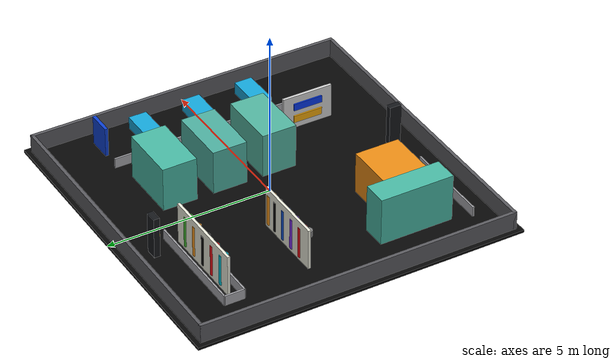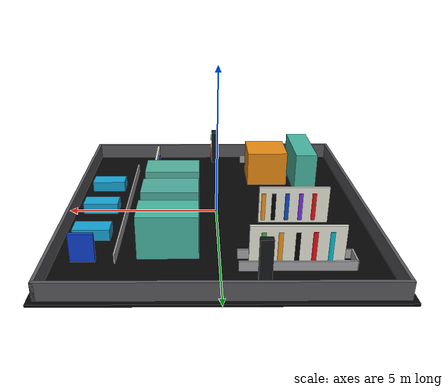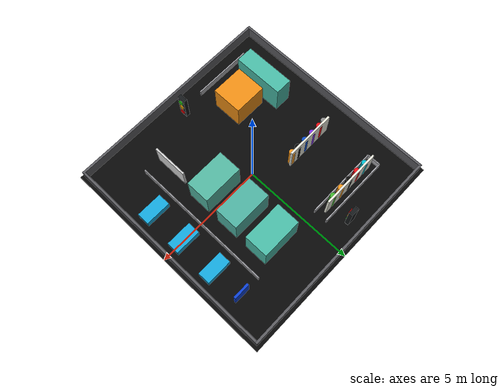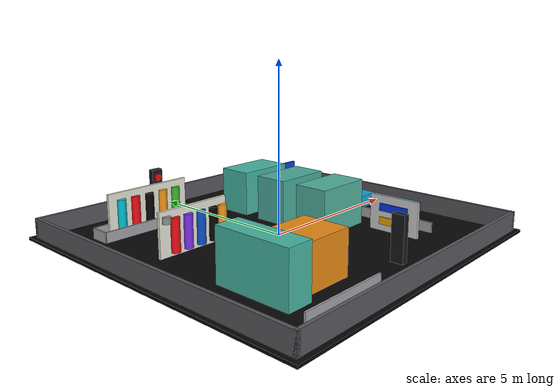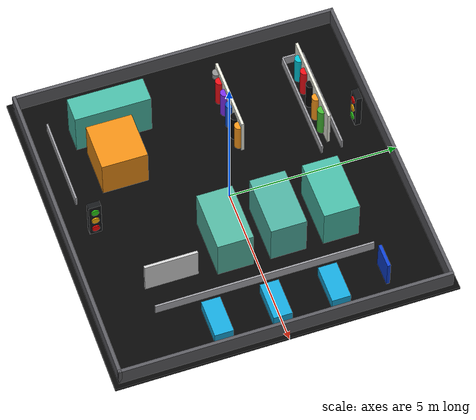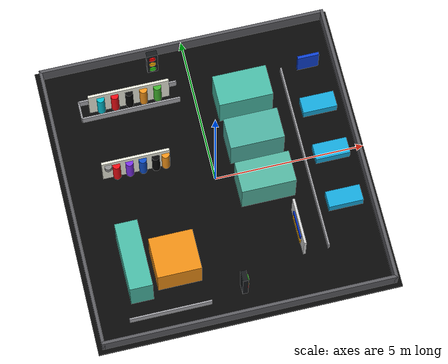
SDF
<?xml version="1.0"?>
<sdf version="1.6">
  <world name="smart_community">
    <plugin name="ros_api" filename="libgazebo_ros_api_plugin.so"/>

    <gravity>0 0 -9.8</gravity>
    <physics type="ode">
      <real_time_update_rate>1000</real_time_update_rate>
      <max_step_size>0.001</max_step_size>
    </physics>
    <scene>
      <ambient>0.55 0.55 0.55 1</ambient>
      <background>0.78 0.82 0.86 1</background>
      <shadows>true</shadows>
    </scene>
    <gui fullscreen="0">
      <camera name="user_camera">
        <pose>0 -8.8 9.0 0 0.78 1.5708</pose>
        <view_controller>orbit</view_controller>
      </camera>
    </gui>

    <light name="sun" type="directional">
      <pose>0 0 10 0 0 0</pose>
      <diffuse>0.95 0.95 0.90 1</diffuse>
      <specular>0.25 0.25 0.25 1</specular>
      <direction>-0.4 0.2 -0.9</direction>
    </light>

    <!-- The official field uses the existing 10 m x 10 m coordinate system. -->
    <model name="map_floor">
      <static>true</static>
      <link name="floor">
        <collision name="floor_collision">
          <pose>0 0 0 0 0 0</pose>
          <geometry><box><size>10 10 0.08</size></box></geometry>
          <surface>
            <friction><ode><mu>1.0</mu><mu2>1.0</mu2></ode></friction>
          </surface>
        </collision>
        <visual name="black_floor">
          <pose>0 0 0.005 0 0 0</pose>
          <geometry><box><size>10 10 0.08</size></box></geometry>
          <material><ambient>0.025 0.025 0.025 1</ambient><diffuse>0.025 0.025 0.025 1</diffuse></material>
        </visual>
      </link>
    </model>

    <!-- White guide lines are 1 mm high visuals only, so they cannot block wheels. -->
    <model name="map_white_lines">
      <static>true</static>
      <link name="lines">
        <visual name="outer_bottom"><pose>0 -4.75 0.041 0 0 0</pose><geometry><box><size>9.5 0.05 0.001</size></box></geometry><material><ambient>1 1 1 1</ambient><diffuse>1 1 1 1</diffuse></material></visual>
        <visual name="outer_top"><pose>0 4.75 0.041 0 0 0</pose><geometry><box><size>9.5 0.05 0.001</size></box></geometry><material><ambient>1 1 1 1</ambient><diffuse>1 1 1 1</diffuse></material></visual>
        <visual name="outer_left"><pose>-4.75 0 0.041 0 0 0</pose><geometry><box><size>0.05 9.5 0.001</size></box></geometry><material><ambient>1 1 1 1</ambient><diffuse>1 1 1 1</diffuse></material></visual>
        <visual name="outer_right"><pose>4.75 0 0.041 0 0 0</pose><geometry><box><size>0.05 9.5 0.001</size></box></geometry><material><ambient>1 1 1 1</ambient><diffuse>1 1 1 1</diffuse></material></visual>
        <visual name="parking_left"><pose>3.0 0 0.041 0 0 0</pose><geometry><box><size>0.05 9.5 0.001</size></box></geometry><material><ambient>1 1 1 1</ambient><diffuse>1 1 1 1</diffuse></material></visual>
        <visual name="parking_slot_1"><pose>3.88 2.55 0.041 0 0 0</pose><geometry><box><size>1.75 0.05 0.001</size></box></geometry><material><ambient>1 1 1 1</ambient><diffuse>1 1 1 1</diffuse></material></visual>
        <visual name="parking_slot_2"><pose>3.88 0.85 0.041 0 0 0</pose><geometry><box><size>1.75 0.05 0.001</size></box></geometry><material><ambient>1 1 1 1</ambient><diffuse>1 1 1 1</diffuse></material></visual>
        <visual name="parking_slot_3"><pose>3.88 -0.85 0.041 0 0 0</pose><geometry><box><size>1.75 0.05 0.001</size></box></geometry><material><ambient>1 1 1 1</ambient><diffuse>1 1 1 1</diffuse></material></visual>
        <visual name="parking_slot_4"><pose>3.88 -2.55 0.041 0 0 0</pose><geometry><box><size>1.75 0.05 0.001</size></box></geometry><material><ambient>1 1 1 1</ambient><diffuse>1 1 1 1</diffuse></material></visual>
        <visual name="people_a_top"><pose>-2.15 3.55 0.041 0 0 0</pose><geometry><box><size>3.3 0.05 0.001</size></box></geometry><material><ambient>1 1 1 1</ambient><diffuse>1 1 1 1</diffuse></material></visual>
        <!-- Official marked A-area width: 3.55 - 2.95 = 0.60 m. -->
        <visual name="people_a_left"><pose>-3.8 3.25 0.041 0 0 0</pose><geometry><box><size>0.05 0.60 0.001</size></box></geometry><material><ambient>1 1 1 1</ambient><diffuse>1 1 1 1</diffuse></material></visual>
        <visual name="people_a_bottom"><pose>-2.15 2.95 0.041 0 0 0</pose><geometry><box><size>3.3 0.05 0.001</size></box></geometry><material><ambient>1 1 1 1</ambient><diffuse>1 1 1 1</diffuse></material></visual>
        <visual name="people_b_top"><pose>-2.45 1.15 0.041 0 0 0</pose><geometry><box><size>2.7 0.05 0.001</size></box></geometry><material><ambient>1 1 1 1</ambient><diffuse>1 1 1 1</diffuse></material></visual>
        <visual name="left_block_left"><pose>-3.8 -1.45 0.041 0 0 0</pose><geometry><box><size>0.05 5.2 0.001</size></box></geometry><material><ambient>1 1 1 1</ambient><diffuse>1 1 1 1</diffuse></material></visual>
        <visual name="left_block_right"><pose>-1.1 -1.45 0.041 0 0 0</pose><geometry><box><size>0.05 5.2 0.001</size></box></geometry><material><ambient>1 1 1 1</ambient><diffuse>1 1 1 1</diffuse></material></visual>
        <!-- Official marked bottom width: -4.15 - (-4.75) = 0.60 m. -->
        <visual name="left_block_bottom"><pose>-2.45 -4.15 0.041 0 0 0</pose><geometry><box><size>2.7 0.05 0.001</size></box></geometry><material><ambient>1 1 1 1</ambient><diffuse>1 1 1 1</diffuse></material></visual>
        <visual name="central_left"><pose>0.55 0.0 0.041 0 0 0</pose><geometry><box><size>0.05 7.0 0.001</size></box></geometry><material><ambient>1 1 1 1</ambient><diffuse>1 1 1 1</diffuse></material></visual>
        <visual name="central_right"><pose>2.4 0.0 0.041 0 0 0</pose><geometry><box><size>0.05 7.0 0.001</size></box></geometry><material><ambient>1 1 1 1</ambient><diffuse>1 1 1 1</diffuse></material></visual>
      </link>
    </model>

    <model name="outer_walls">
      <static>true</static>
      <link name="walls">
        <collision name="north_collision"><pose>0 4.80 0.30 0 0 0</pose><geometry><box><size>9.70 0.10 0.60</size></box></geometry></collision>
        <collision name="south_collision"><pose>0 -4.80 0.30 0 0 0</pose><geometry><box><size>9.70 0.10 0.60</size></box></geometry></collision>
        <collision name="east_collision"><pose>4.80 0 0.30 0 0 0</pose><geometry><box><size>0.10 9.70 0.60</size></box></geometry></collision>
        <collision name="west_collision"><pose>-4.80 0 0.30 0 0 0</pose><geometry><box><size>0.10 9.70 0.60</size></box></geometry></collision>
        <visual name="north"><pose>0 4.80 0.30 0 0 0</pose><geometry><box><size>9.70 0.10 0.60</size></box></geometry><material><ambient>0.35 0.35 0.37 1</ambient><diffuse>0.35 0.35 0.37 1</diffuse></material></visual>
        <visual name="south"><pose>0 -4.80 0.30 0 0 0</pose><geometry><box><size>9.70 0.10 0.60</size></box></geometry><material><ambient>0.35 0.35 0.37 1</ambient><diffuse>0.35 0.35 0.37 1</diffuse></material></visual>
        <visual name="east"><pose>4.80 0 0.30 0 0 0</pose><geometry><box><size>0.10 9.70 0.60</size></box></geometry><material><ambient>0.35 0.35 0.37 1</ambient><diffuse>0.35 0.35 0.37 1</diffuse></material></visual>
        <visual name="west"><pose>-4.80 0 0.30 0 0 0</pose><geometry><box><size>0.10 9.70 0.60</size></box></geometry><material><ambient>0.35 0.35 0.37 1</ambient><diffuse>0.35 0.35 0.37 1</diffuse></material></visual>
      </link>
    </model>

    <!-- Low physical boundaries make all three official 0.60 m markings lidar-visible. -->
    <model name="field_boundaries">
      <static>true</static>
      <link name="boundaries">
        <collision name="people_a_top_boundary"><pose>-2.15 3.55 0.175 0 0 0</pose><geometry><box><size>3.30 0.05 0.35</size></box></geometry></collision>
        <collision name="people_a_bottom_boundary"><pose>-2.15 2.95 0.175 0 0 0</pose><geometry><box><size>3.30 0.05 0.35</size></box></geometry></collision>
        <collision name="people_a_left_boundary"><pose>-3.80 3.25 0.175 0 0 0</pose><geometry><box><size>0.05 0.60 0.35</size></box></geometry></collision>
        <collision name="parking_boundary"><pose>3.00 0 0.175 0 0 0</pose><geometry><box><size>0.05 6.40 0.35</size></box></geometry></collision>
        <collision name="left_block_bottom_boundary"><pose>-2.45 -4.15 0.175 0 0 0</pose><geometry><box><size>2.70 0.05 0.35</size></box></geometry></collision>
        <visual name="people_a_top_wall"><pose>-2.15 3.55 0.175 0 0 0</pose><geometry><box><size>3.30 0.05 0.35</size></box></geometry><material><ambient>0.65 0.65 0.67 1</ambient><diffuse>0.65 0.65 0.67 1</diffuse></material></visual>
        <visual name="people_a_bottom_wall"><pose>-2.15 2.95 0.175 0 0 0</pose><geometry><box><size>3.30 0.05 0.35</size></box></geometry><material><ambient>0.65 0.65 0.67 1</ambient><diffuse>0.65 0.65 0.67 1</diffuse></material></visual>
        <visual name="people_a_left_wall"><pose>-3.80 3.25 0.175 0 0 0</pose><geometry><box><size>0.05 0.60 0.35</size></box></geometry><material><ambient>0.65 0.65 0.67 1</ambient><diffuse>0.65 0.65 0.67 1</diffuse></material></visual>
        <visual name="parking_wall"><pose>3.00 0 0.175 0 0 0</pose><geometry><box><size>0.05 6.40 0.35</size></box></geometry><material><ambient>0.65 0.65 0.67 1</ambient><diffuse>0.65 0.65 0.67 1</diffuse></material></visual>
        <visual name="left_block_bottom_wall"><pose>-2.45 -4.15 0.175 0 0 0</pose><geometry><box><size>2.70 0.05 0.35</size></box></geometry><material><ambient>0.65 0.65 0.67 1</ambient><diffuse>0.65 0.65 0.67 1</diffuse></material></visual>
      </link>
    </model>

    <!-- A and B inspection boards. Their thin collisions are visible to lidar. -->
    <model name="people_area_a">
      <static>true</static><pose>-2.15 3.25 0.68 0 0 0</pose>
      <link name="board">
        <collision name="board_collision"><geometry><box><size>2.7 0.08 1.25</size></box></geometry></collision>
        <visual name="board"><geometry><box><size>2.7 0.08 1.25</size></box></geometry><material><ambient>0.92 0.92 0.86 1</ambient><diffuse>0.92 0.92 0.86 1</diffuse></material></visual>
        <visual name="person_cyan"><pose>-0.95 -0.07 -0.05 0 0 0</pose><geometry><cylinder><radius>0.13</radius><length>0.95</length></cylinder></geometry><material><ambient>0.0 0.75 0.82 1</ambient><diffuse>0.0 0.75 0.82 1</diffuse></material></visual>
        <visual name="person_red"><pose>-0.48 -0.07 -0.05 0 0 0</pose><geometry><cylinder><radius>0.13</radius><length>0.95</length></cylinder></geometry><material><ambient>0.92 0.05 0.08 1</ambient><diffuse>0.92 0.05 0.08 1</diffuse></material></visual>
        <visual name="person_black"><pose>0 -0.07 -0.05 0 0 0</pose><geometry><cylinder><radius>0.13</radius><length>0.95</length></cylinder></geometry><material><ambient>0.02 0.02 0.02 1</ambient><diffuse>0.02 0.02 0.02 1</diffuse></material></visual>
        <visual name="person_orange"><pose>0.48 -0.07 -0.05 0 0 0</pose><geometry><cylinder><radius>0.13</radius><length>0.95</length></cylinder></geometry><material><ambient>0.95 0.58 0.10 1</ambient><diffuse>0.95 0.58 0.10 1</diffuse></material></visual>
        <visual name="person_green"><pose>0.95 -0.07 -0.05 0 0 0</pose><geometry><cylinder><radius>0.13</radius><length>0.95</length></cylinder></geometry><material><ambient>0.25 0.70 0.18 1</ambient><diffuse>0.25 0.70 0.18 1</diffuse></material></visual>
      </link>
    </model>

    <model name="people_area_b">
      <static>true</static><pose>-2.45 0.86 0.68 0 0 0</pose>
      <link name="board">
        <collision name="board_collision"><geometry><box><size>2.25 0.08 1.25</size></box></geometry></collision>
        <visual name="board"><geometry><box><size>2.25 0.08 1.25</size></box></geometry><material><ambient>0.92 0.92 0.86 1</ambient><diffuse>0.92 0.92 0.86 1</diffuse></material></visual>
        <visual name="instruction_sign"><pose>-0.92 -0.08 0.40 0 0 0</pose><geometry><cylinder><radius>0.12</radius><length>0.18</length></cylinder></geometry><material><ambient>0.55 0.55 0.55 1</ambient><diffuse>0.55 0.55 0.55 1</diffuse></material></visual>
        <visual name="person_red"><pose>-0.65 -0.07 -0.06 0 0 0</pose><geometry><cylinder><radius>0.13</radius><length>0.95</length></cylinder></geometry><material><ambient>0.92 0.05 0.08 1</ambient><diffuse>0.92 0.05 0.08 1</diffuse></material></visual>
        <visual name="person_purple"><pose>-0.22 -0.07 -0.06 0 0 0</pose><geometry><cylinder><radius>0.13</radius><length>0.95</length></cylinder></geometry><material><ambient>0.48 0.18 0.90 1</ambient><diffuse>0.48 0.18 0.90 1</diffuse></material></visual>
        <visual name="person_blue"><pose>0.22 -0.07 -0.06 0 0 0</pose><geometry><cylinder><radius>0.13</radius><length>0.95</length></cylinder></geometry><material><ambient>0.05 0.30 0.78 1</ambient><diffuse>0.05 0.30 0.78 1</diffuse></material></visual>
        <visual name="person_black"><pose>0.65 -0.07 -0.06 0 0 0</pose><geometry><cylinder><radius>0.13</radius><length>0.95</length></cylinder></geometry><material><ambient>0.02 0.02 0.02 1</ambient><diffuse>0.02 0.02 0.02 1</diffuse></material></visual>
        <visual name="person_orange"><pose>0.98 -0.07 -0.06 0 0 0</pose><geometry><cylinder><radius>0.13</radius><length>0.95</length></cylinder></geometry><material><ambient>0.95 0.58 0.10 1</ambient><diffuse>0.95 0.58 0.10 1</diffuse></material></visual>
      </link>
    </model>

    <model name="building_a">
      <static>true</static><pose>1.50 2.45 0.70 0 0 0</pose>
      <link name="building"><collision name="collision"><geometry><box><size>1.80 1.05 1.40</size></box></geometry></collision><visual name="body"><geometry><box><size>1.80 1.05 1.40</size></box></geometry><material><ambient>0.28 0.72 0.64 1</ambient><diffuse>0.28 0.72 0.64 1</diffuse></material></visual></link>
    </model>
    <model name="building_b">
      <static>true</static><pose>1.50 0.90 0.70 0 0 0</pose>
      <link name="building"><collision name="collision"><geometry><box><size>1.80 1.05 1.40</size></box></geometry></collision><visual name="body"><geometry><box><size>1.80 1.05 1.40</size></box></geometry><material><ambient>0.30 0.68 0.62 1</ambient><diffuse>0.30 0.68 0.62 1</diffuse></material></visual></link>
    </model>
    <model name="building_c">
      <static>true</static><pose>1.50 -0.65 0.70 0 0 0</pose>
      <link name="building"><collision name="collision"><geometry><box><size>1.80 1.05 1.40</size></box></geometry></collision><visual name="body"><geometry><box><size>1.80 1.05 1.40</size></box></geometry><material><ambient>0.32 0.70 0.62 1</ambient><diffuse>0.32 0.70 0.62 1</diffuse></material></visual></link>
    </model>
    <model name="building_d">
      <static>true</static><pose>-3.25 -2.45 0.75 0 0 0</pose>
      <link name="building"><collision name="collision"><geometry><box><size>0.75 2.25 1.50</size></box></geometry></collision><visual name="body"><geometry><box><size>0.75 2.25 1.50</size></box></geometry><material><ambient>0.28 0.72 0.64 1</ambient><diffuse>0.28 0.72 0.64 1</diffuse></material></visual></link>
    </model>
    <model name="station_room">
      <static>true</static><pose>-1.95 -2.65 0.65 0 0 0</pose>
      <link name="room"><collision name="collision"><geometry><box><size>1.45 1.35 1.30</size></box></geometry></collision><visual name="body"><geometry><box><size>1.45 1.35 1.30</size></box></geometry><material><ambient>0.92 0.55 0.08 1</ambient><diffuse>0.92 0.55 0.08 1</diffuse></material></visual></link>
    </model>

    <!-- North zebra crossing. -->
    <model name="zebra_crossing_north">
      <static>true</static><link name="stripes">
        <visual name="s1"><pose>-0.75 3.82 0.043 0 0 0</pose><geometry><box><size>0.14 1.35 0.002</size></box></geometry><material><ambient>0.85 0.85 0.85 1</ambient><diffuse>0.85 0.85 0.85 1</diffuse></material></visual>
        <visual name="s2"><pose>-0.45 3.82 0.043 0 0 0</pose><geometry><box><size>0.14 1.35 0.002</size></box></geometry><material><ambient>0.85 0.85 0.85 1</ambient><diffuse>0.85 0.85 0.85 1</diffuse></material></visual>
        <visual name="s3"><pose>-0.15 3.82 0.043 0 0 0</pose><geometry><box><size>0.14 1.35 0.002</size></box></geometry><material><ambient>0.85 0.85 0.85 1</ambient><diffuse>0.85 0.85 0.85 1</diffuse></material></visual>
        <visual name="s4"><pose>0.15 3.82 0.043 0 0 0</pose><geometry><box><size>0.14 1.35 0.002</size></box></geometry><material><ambient>0.85 0.85 0.85 1</ambient><diffuse>0.85 0.85 0.85 1</diffuse></material></visual>
        <visual name="s5"><pose>0.45 3.82 0.043 0 0 0</pose><geometry><box><size>0.14 1.35 0.002</size></box></geometry><material><ambient>0.85 0.85 0.85 1</ambient><diffuse>0.85 0.85 0.85 1</diffuse></material></visual>
        <visual name="s6"><pose>0.75 3.82 0.043 0 0 0</pose><geometry><box><size>0.14 1.35 0.002</size></box></geometry><material><ambient>0.85 0.85 0.85 1</ambient><diffuse>0.85 0.85 0.85 1</diffuse></material></visual>
      </link>
    </model>

    <model name="zebra_crossing_south">
      <static>true</static><link name="stripes">
        <visual name="s1"><pose>-0.75 -3.45 0.043 0 0 0</pose><geometry><box><size>0.14 1.25 0.002</size></box></geometry><material><ambient>0.85 0.85 0.85 1</ambient><diffuse>0.85 0.85 0.85 1</diffuse></material></visual>
        <visual name="s2"><pose>-0.45 -3.45 0.043 0 0 0</pose><geometry><box><size>0.14 1.25 0.002</size></box></geometry><material><ambient>0.85 0.85 0.85 1</ambient><diffuse>0.85 0.85 0.85 1</diffuse></material></visual>
        <visual name="s3"><pose>-0.15 -3.45 0.043 0 0 0</pose><geometry><box><size>0.14 1.25 0.002</size></box></geometry><material><ambient>0.85 0.85 0.85 1</ambient><diffuse>0.85 0.85 0.85 1</diffuse></material></visual>
        <visual name="s4"><pose>0.15 -3.45 0.043 0 0 0</pose><geometry><box><size>0.14 1.25 0.002</size></box></geometry><material><ambient>0.85 0.85 0.85 1</ambient><diffuse>0.85 0.85 0.85 1</diffuse></material></visual>
        <visual name="s5"><pose>0.45 -3.45 0.043 0 0 0</pose><geometry><box><size>0.14 1.25 0.002</size></box></geometry><material><ambient>0.85 0.85 0.85 1</ambient><diffuse>0.85 0.85 0.85 1</diffuse></material></visual>
        <visual name="s6"><pose>0.75 -3.45 0.043 0 0 0</pose><geometry><box><size>0.14 1.25 0.002</size></box></geometry><material><ambient>0.85 0.85 0.85 1</ambient><diffuse>0.85 0.85 0.85 1</diffuse></material></visual>
      </link>
    </model>

    <model name="traffic_light_north">
      <static>true</static><pose>-1.15 4.20 0.85 0 0 0</pose>
      <link name="light">
        <collision name="body_collision"><geometry><box><size>0.36 0.18 1.25</size></box></geometry></collision>
        <visual name="body"><geometry><box><size>0.36 0.18 1.25</size></box></geometry><material><ambient>0.08 0.09 0.10 1</ambient><diffuse>0.08 0.09 0.10 1</diffuse></material></visual>
        <visual name="red"><pose>0 -0.11 0.38 1.5708 0 0</pose><geometry><cylinder><radius>0.11</radius><length>0.04</length></cylinder></geometry><material><ambient>1 0.02 0.02 1</ambient><diffuse>1 0.02 0.02 1</diffuse></material></visual>
        <visual name="yellow"><pose>0 -0.11 0 1.5708 0 0</pose><geometry><cylinder><radius>0.11</radius><length>0.04</length></cylinder></geometry><material><ambient>1 0.70 0.02 1</ambient><diffuse>1 0.70 0.02 1</diffuse></material></visual>
        <visual name="green"><pose>0 -0.11 -0.38 1.5708 0 0</pose><geometry><cylinder><radius>0.11</radius><length>0.04</length></cylinder></geometry><material><ambient>0.18 0.85 0.10 1</ambient><diffuse>0.18 0.85 0.10 1</diffuse></material></visual>
      </link>
    </model>

    <model name="traffic_light_south">
      <static>true</static><pose>0 -3.95 0.85 0 0 1.5708</pose>
      <link name="light">
        <collision name="body_collision"><geometry><box><size>0.36 0.18 1.25</size></box></geometry></collision>
        <visual name="body"><geometry><box><size>0.36 0.18 1.25</size></box></geometry><material><ambient>0.08 0.09 0.10 1</ambient><diffuse>0.08 0.09 0.10 1</diffuse></material></visual>
        <visual name="green"><pose>0 -0.11 0.38 1.5708 0 0</pose><geometry><cylinder><radius>0.11</radius><length>0.04</length></cylinder></geometry><material><ambient>0.18 0.85 0.10 1</ambient><diffuse>0.18 0.85 0.10 1</diffuse></material></visual>
        <visual name="yellow"><pose>0 -0.11 0 1.5708 0 0</pose><geometry><cylinder><radius>0.11</radius><length>0.04</length></cylinder></geometry><material><ambient>1 0.70 0.02 1</ambient><diffuse>1 0.70 0.02 1</diffuse></material></visual>
        <visual name="red"><pose>0 -0.11 -0.38 1.5708 0 0</pose><geometry><cylinder><radius>0.11</radius><length>0.04</length></cylinder></geometry><material><ambient>1 0.02 0.02 1</ambient><diffuse>1 0.02 0.02 1</diffuse></material></visual>
      </link>
    </model>

    <!-- Official marked right width: x=3.00 - building east face x=2.40 = 0.60 m. -->
    <model name="parking_zone">
      <static>true</static><link name="parking_signs">
        <visual name="parking_sign"><pose>3.90 3.15 0.55 0 0 0</pose><geometry><box><size>0.72 0.10 0.90</size></box></geometry><material><ambient>0.05 0.25 0.82 1</ambient><diffuse>0.05 0.25 0.82 1</diffuse></material></visual>
      </link>
    </model>

    <model name="parked_car_1">
      <static>true</static><pose>3.90 -1.70 0.22 0 0 0</pose><link name="car"><collision name="collision"><geometry><box><size>1.15 0.55 0.38</size></box></geometry></collision><visual name="body"><geometry><box><size>1.15 0.55 0.38</size></box></geometry><material><ambient>0.08 0.65 0.85 1</ambient><diffuse>0.08 0.65 0.85 1</diffuse></material></visual></link>
    </model>
    <model name="parked_car_2">
      <static>true</static><pose>3.90 0.00 0.22 0 0 0</pose><link name="car"><collision name="collision"><geometry><box><size>1.15 0.55 0.38</size></box></geometry></collision><visual name="body"><geometry><box><size>1.15 0.55 0.38</size></box></geometry><material><ambient>0.08 0.65 0.85 1</ambient><diffuse>0.08 0.65 0.85 1</diffuse></material></visual></link>
    </model>
    <model name="parked_car_3">
      <static>true</static><pose>3.90 1.70 0.22 0 0 0</pose><link name="car"><collision name="collision"><geometry><box><size>1.15 0.55 0.38</size></box></geometry></collision><visual name="body"><geometry><box><size>1.15 0.55 0.38</size></box></geometry><material><ambient>0.08 0.65 0.85 1</ambient><diffuse>0.08 0.65 0.85 1</diffuse></material></visual></link>
    </model>

    <model name="plate_targets">
      <static>true</static><pose>2.18 -2.45 0.60 0 0 -1.5708</pose>
      <link name="panel">
        <collision name="panel_collision"><geometry><box><size>1.55 0.08 1.05</size></box></geometry></collision>
        <visual name="panel"><geometry><box><size>1.55 0.08 1.05</size></box></geometry><material><ambient>0.82 0.82 0.82 1</ambient><diffuse>0.82 0.82 0.82 1</diffuse></material></visual>
        <visual name="plate_blue"><pose>0 -0.06 0.18 0 0 0</pose><geometry><box><size>0.90 0.04 0.22</size></box></geometry><material><ambient>0.02 0.22 0.92 1</ambient><diffuse>0.02 0.22 0.92 1</diffuse></material></visual>
        <visual name="plate_yellow"><pose>0 -0.06 -0.22 0 0 0</pose><geometry><box><size>0.90 0.04 0.22</size></box></geometry><material><ambient>0.95 0.66 0.04 1</ambient><diffuse>0.95 0.66 0.04 1</diffuse></material></visual>
      </link>
    </model>
  </world>
</sdf>
